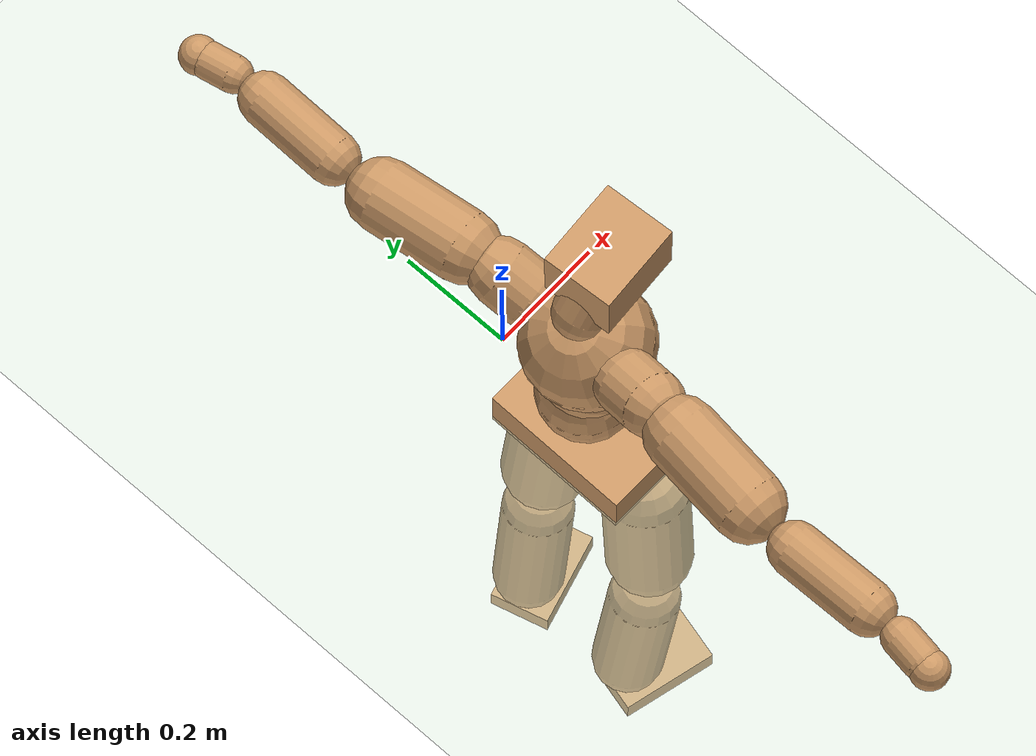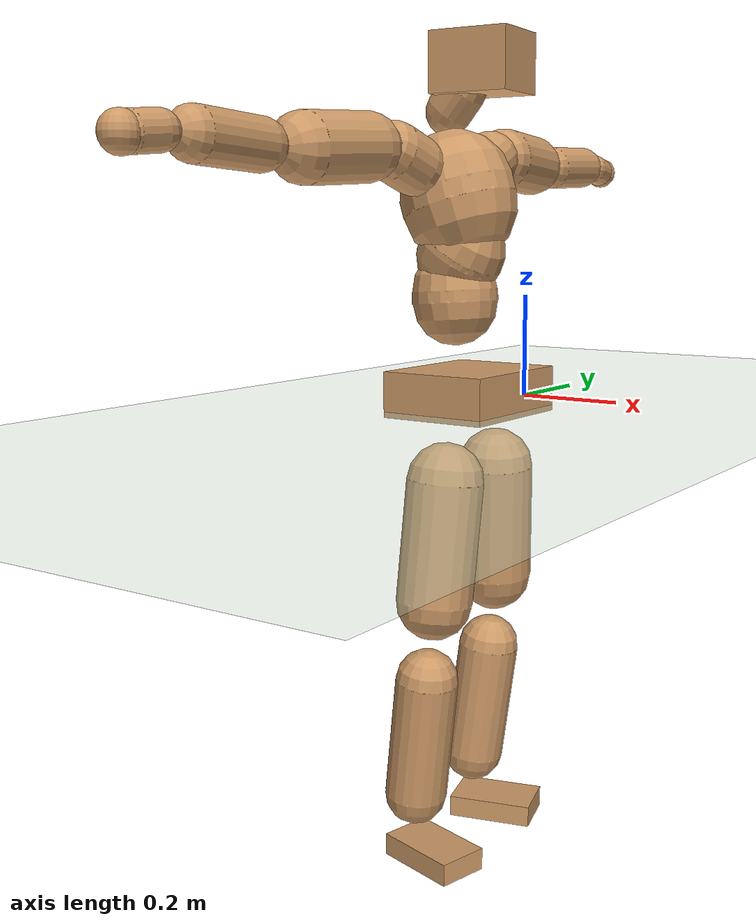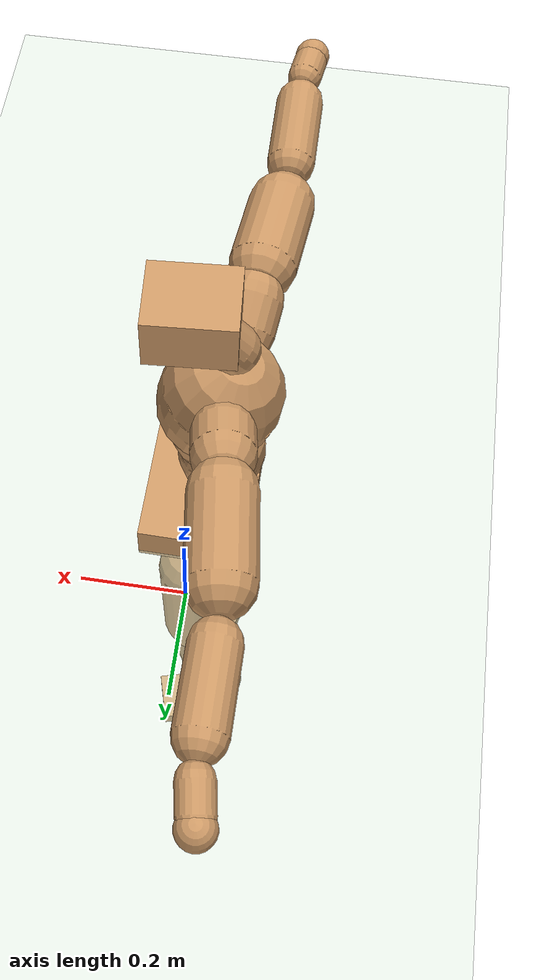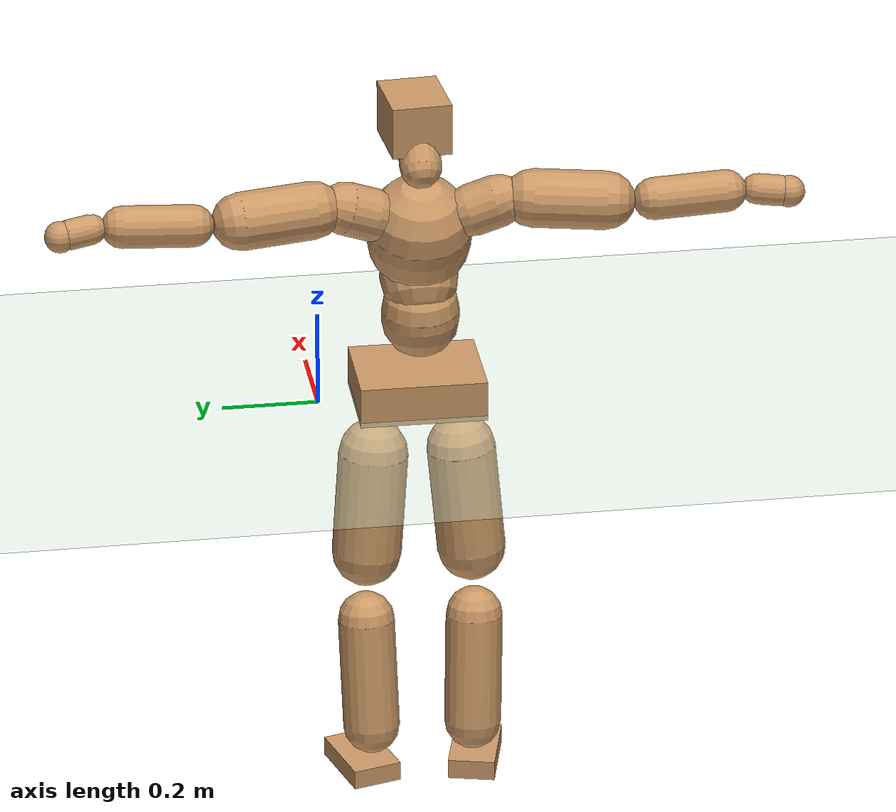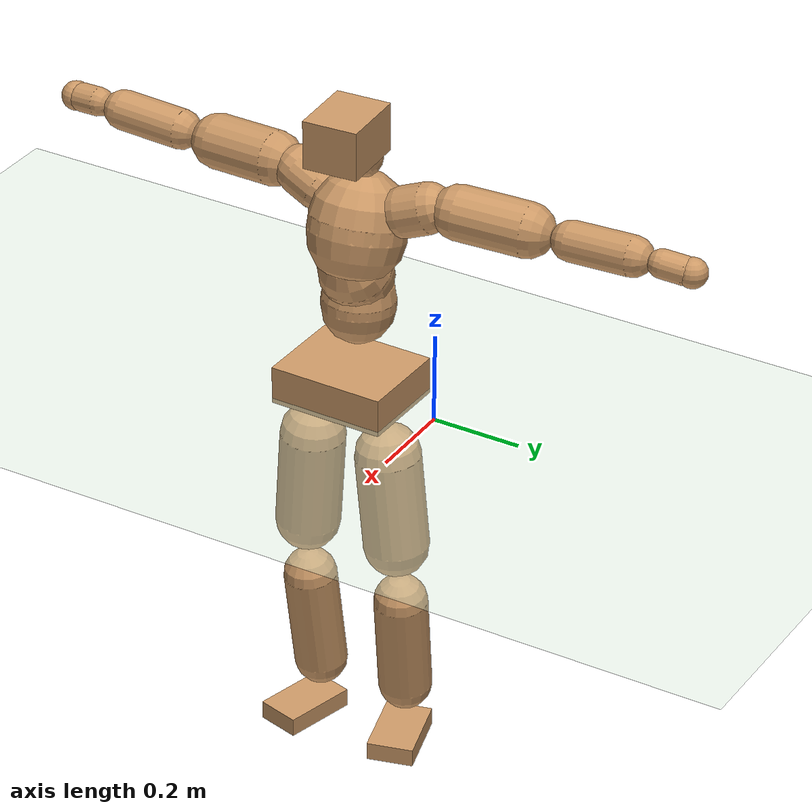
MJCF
<mujoco model="humanoid">
  <compiler coordinate="local" angle="radian"/>
  <default>
    <joint damping="0.0" armature="0.01" stiffness="0.0" limited="true"/>
    <geom conaffinity="1" condim="3" contype="7" margin="0.001" rgba="0.8 0.6 .4 1"/>
  </default>
  <asset>
    <texture type="skybox" builtin="gradient" rgb1=".4 .5 .6" rgb2="0 0 0" width="100" height="100"/>
    <texture builtin="flat" height="1278" mark="cross" markrgb="1 1 1" name="texgeom" random="0.01" rgb1="0.8 0.6 0.4" rgb2="0.8 0.6 0.4" type="cube" width="127"/>
    <texture builtin="checker" height="100" name="texplane" rgb1="0 0 0" rgb2="0.8 0.8 0.8" type="2d" width="100"/>
    <material name="MatPlane" reflectance="0.5" shininess="1" specular="1" texrepeat="60 60" texture="texplane"/>
    <material name="geom" texture="texgeom" texuniform="true"/>
  </asset>
  <worldbody>
    <light cutoff="100" diffuse="1 1 1" dir="-0 0 -1.3" directional="true" exponent="1" pos="0 0 1.3" specular=".1 .1 .1"/>
    <geom conaffinity="1" condim="3" name="floor" pos="0 0 0" rgba="0.8 0.9 0.8 1" size="100 100 .2" type="plane" material="MatPlane"/>
    <body name="Pelvis" pos="0.0016 -0.2056 0.043">
      <freejoint name="Pelvis"/>
      <geom type="box" contype="1" conaffinity="1" density="500" pos="-0.0050 0.0001 -0.0132" size="0.1041 0.131 0.0426" quat="1.0000 0.0000 0.0000 -0.0074" name="Pelvis"/>
      <body name="L_Hip" pos="0.0009 0.087 -0.0931">
        <joint name="L_Hip_x" type="hinge" pos="0 0 0" axis="1 0 0" stiffness="800" damping="80" armature="0.02" range="-180.0000 180.0000"/>
        <joint name="L_Hip_y" type="hinge" pos="0 0 0" axis="0 1 0" stiffness="800" damping="80" armature="0.02" range="-180.0000 180.0000"/>
        <joint name="L_Hip_z" type="hinge" pos="0 0 0" axis="0 0 1" stiffness="800" damping="80" armature="0.02" range="-180.0000 180.0000"/>
        <geom type="capsule" contype="1" conaffinity="1" density="500" fromto="-0.0031 0.0054 -0.0746 -0.0124 0.0215 -0.2983" size="0.0724" name="L_Hip"/>
        <body name="L_Knee" pos="-0.0155 0.0269 -0.3729">
          <joint name="L_Knee_x" type="hinge" pos="0 0 0" axis="1 0 0" stiffness="800" damping="80" armature="0.02" range="-180.0000 180.0000"/>
          <joint name="L_Knee_y" type="hinge" pos="0 0 0" axis="0 1 0" stiffness="800" damping="80" armature="0.02" range="-180.0000 180.0000"/>
          <joint name="L_Knee_z" type="hinge" pos="0 0 0" axis="0 0 1" stiffness="800" damping="80" armature="0.02" range="-180.0000 180.0000"/>
          <geom type="capsule" contype="1" conaffinity="1" density="500" fromto="-0.0102 -0.0019 -0.0785 -0.0410 -0.0077 -0.3141" size="0.0596" name="L_Knee"/>
          <body name="L_Ankle" pos="-0.0512 -0.0096 -0.3927">
            <joint name="L_Ankle_x" type="hinge" pos="0 0 0" axis="1 0 0" stiffness="800" damping="80" armature="0.02" range="-180.0000 180.0000"/>
            <joint name="L_Ankle_y" type="hinge" pos="0 0 0" axis="0 1 0" stiffness="800" damping="80" armature="0.02" range="-180.0000 180.0000"/>
            <joint name="L_Ankle_z" type="hinge" pos="0 0 0" axis="0 0 1" stiffness="800" damping="80" armature="0.02" range="-180.0000 180.0000"/>
            <geom type="box" contype="1" conaffinity="1" density="500" pos="0.0571 0.0155 -0.0284" size="0.0825 0.0518 0.0205" quat="0.9912 0.0000 0.0000 0.1326" name="L_Ankle"/>
            <body name="L_Toe" pos="0.1141 0.0311 -0.0567">
              <joint name="L_Toe_x" type="hinge" pos="0 0 0" axis="1 0 0" stiffness="500" damping="50" armature="0.02" range="-180.0000 180.0000"/>
              <joint name="L_Toe_y" type="hinge" pos="0 0 0" axis="0 1 0" stiffness="500" damping="50" armature="0.02" range="-180.0000 180.0000"/>
              <joint name="L_Toe_z" type="hinge" pos="0 0 0" axis="0 0 1" stiffness="500" damping="50" armature="0.02" range="-180.0000 180.0000"/>
              <geom type="box" contype="1" conaffinity="1" density="500" pos="0.0000 0.0000 0.0294" size="0.001 0.0025 0.0011" quat="0.9904 0.0000 0.0000 0.1384" name="L_Toe"/>
            </body>
          </body>
        </body>
      </body>
      <body name="R_Hip" pos="0.0036 -0.0849 -0.093">
        <joint name="R_Hip_x" type="hinge" pos="0 0 0" axis="1 0 0" stiffness="800" damping="80" armature="0.02" range="-180.0000 180.0000"/>
        <joint name="R_Hip_y" type="hinge" pos="0 0 0" axis="0 1 0" stiffness="800" damping="80" armature="0.02" range="-180.0000 180.0000"/>
        <joint name="R_Hip_z" type="hinge" pos="0 0 0" axis="0 0 1" stiffness="800" damping="80" armature="0.02" range="-180.0000 180.0000"/>
        <geom type="capsule" contype="1" conaffinity="1" density="500" fromto="-0.0034 -0.0069 -0.0757 -0.0137 -0.0275 -0.3030" size="0.0717" name="R_Hip"/>
        <body name="R_Knee" pos="-0.0171 -0.0343 -0.3787">
          <joint name="R_Knee_x" type="hinge" pos="0 0 0" axis="1 0 0" stiffness="800" damping="80" armature="0.02" range="-180.0000 180.0000"/>
          <joint name="R_Knee_y" type="hinge" pos="0 0 0" axis="0 1 0" stiffness="800" damping="80" armature="0.02" range="-180.0000 180.0000"/>
          <joint name="R_Knee_z" type="hinge" pos="0 0 0" axis="0 0 1" stiffness="800" damping="80" armature="0.02" range="-180.0000 180.0000"/>
          <geom type="capsule" contype="1" conaffinity="1" density="500" fromto="-0.0100 0.0024 -0.0792 -0.0402 0.0096 -0.3166" size="0.0595" name="R_Knee"/>
          <body name="R_Ankle" pos="-0.0502 0.012 -0.3958">
            <joint name="R_Ankle_x" type="hinge" pos="0 0 0" axis="1 0 0" stiffness="800" damping="80" armature="0.02" range="-180.0000 180.0000"/>
            <joint name="R_Ankle_y" type="hinge" pos="0 0 0" axis="0 1 0" stiffness="800" damping="80" armature="0.02" range="-180.0000 180.0000"/>
            <joint name="R_Ankle_z" type="hinge" pos="0 0 0" axis="0 0 1" stiffness="800" damping="80" armature="0.02" range="-180.0000 180.0000"/>
            <geom type="box" contype="1" conaffinity="1" density="500" pos="0.0593 -0.0153 -0.0249" size="0.0832 0.0493 0.0211" quat="0.9920 0.0000 0.0000 -0.1260" name="R_Ankle"/>
            <body name="R_Toe" pos="0.1187 -0.0306 -0.0498">
              <joint name="R_Toe_x" type="hinge" pos="0 0 0" axis="1 0 0" stiffness="500" damping="50" armature="0.02" range="-180.0000 180.0000"/>
              <joint name="R_Toe_y" type="hinge" pos="0 0 0" axis="0 1 0" stiffness="500" damping="50" armature="0.02" range="-180.0000 180.0000"/>
              <joint name="R_Toe_z" type="hinge" pos="0 0 0" axis="0 0 1" stiffness="500" damping="50" armature="0.02" range="-180.0000 180.0000"/>
              <geom type="box" contype="1" conaffinity="1" density="500" pos="0.0000 0.0000 0.0264" size="0.001 0.0024 0.0011" quat="0.9932 0.0000 0.0000 -0.1163" name="R_Toe"/>
            </body>
          </body>
        </body>
      </body>
      <body name="Torso" pos="-0.0347 -0.0016 0.1069">
        <joint name="Torso_x" type="hinge" pos="0 0 0" axis="1 0 0" stiffness="1000" damping="100" armature="0.02" range="-180.0000 180.0000"/>
        <joint name="Torso_y" type="hinge" pos="0 0 0" axis="0 1 0" stiffness="1000" damping="100" armature="0.02" range="-180.0000 180.0000"/>
        <joint name="Torso_z" type="hinge" pos="0 0 0" axis="0 0 1" stiffness="1000" damping="100" armature="0.02" range="-180.0000 180.0000"/>
        <geom type="capsule" contype="1" conaffinity="1" density="500" fromto="-0.0045 0.0011 0.0668 -0.0030 0.0008 0.0446" size="0.0803" name="Torso"/>
        <body name="Spine" pos="-0.0075 0.0019 0.1114">
          <joint name="Spine_x" type="hinge" pos="0 0 0" axis="1 0 0" stiffness="1000" damping="100" armature="0.02" range="-180.0000 180.0000"/>
          <joint name="Spine_y" type="hinge" pos="0 0 0" axis="0 1 0" stiffness="1000" damping="100" armature="0.02" range="-180.0000 180.0000"/>
          <joint name="Spine_z" type="hinge" pos="0 0 0" axis="0 0 1" stiffness="1000" damping="100" armature="0.02" range="-180.0000 180.0000"/>
          <geom type="capsule" contype="1" conaffinity="1" density="500" fromto="0.0193 0.0004 0.0289 0.0128 0.0003 0.0192" size="0.0811" name="Spine"/>
          <body name="Chest" pos="0.0321 0.0007 0.0481">
            <joint name="Chest_x" type="hinge" pos="0 0 0" axis="1 0 0" stiffness="1000" damping="100" armature="0.02" range="-180.0000 180.0000"/>
            <joint name="Chest_y" type="hinge" pos="0 0 0" axis="0 1 0" stiffness="1000" damping="100" armature="0.02" range="-180.0000 180.0000"/>
            <joint name="Chest_z" type="hinge" pos="0 0 0" axis="0 0 1" stiffness="1000" damping="100" armature="0.02" range="-180.0000 180.0000"/>
            <geom type="capsule" contype="1" conaffinity="1" density="500" fromto="-0.0278 -0.0005 0.0927 -0.0185 -0.0004 0.0618" size="0.1071" name="Chest"/>
            <body name="Neck" pos="-0.0542 -0.0009 0.2175">
              <joint name="Neck_x" type="hinge" pos="0 0 0" axis="1 0 0" stiffness="500" damping="50" armature="0.02" range="-180.0000 180.0000"/>
              <joint name="Neck_y" type="hinge" pos="0 0 0" axis="0 1 0" stiffness="500" damping="50" armature="0.02" range="-180.0000 180.0000"/>
              <joint name="Neck_z" type="hinge" pos="0 0 0" axis="0 0 1" stiffness="500" damping="50" armature="0.02" range="-180.0000 180.0000"/>
              <geom type="capsule" contype="1" conaffinity="1" density="500" fromto="0.0103 0.0003 0.0122 0.0412 0.0012 0.0488" size="0.0432" name="Neck"/>
              <body name="Head" pos="0.0515 0.0015 0.061">
                <joint name="Head_x" type="hinge" pos="0 0 0" axis="1 0 0" stiffness="500" damping="50" armature="0.02" range="-180.0000 180.0000"/>
                <joint name="Head_y" type="hinge" pos="0 0 0" axis="0 1 0" stiffness="500" damping="50" armature="0.02" range="-180.0000 180.0000"/>
                <joint name="Head_z" type="hinge" pos="0 0 0" axis="0 0 1" stiffness="500" damping="50" armature="0.02" range="-180.0000 180.0000"/>
                <geom type="box" contype="1" conaffinity="1" density="500" pos="0.0268 0.0018 0.0315" size="0.0763 0.0612 0.0539" quat="0.9995 0.0000 0.0000 0.0329" name="Head"/>
              </body>
            </body>
            <body name="L_Thorax" pos="-0.0391 0.0826 0.1239">
              <joint name="L_Thorax_x" type="hinge" pos="0 0 0" axis="1 0 0" stiffness="500" damping="50" armature="0.02" range="-180.0000 180.0000"/>
              <joint name="L_Thorax_y" type="hinge" pos="0 0 0" axis="0 1 0" stiffness="500" damping="50" armature="0.02" range="-180.0000 180.0000"/>
              <joint name="L_Thorax_z" type="hinge" pos="0 0 0" axis="0 0 1" stiffness="500" damping="50" armature="0.02" range="-180.0000 180.0000"/>
              <geom type="capsule" contype="1" conaffinity="1" density="500" fromto="-0.0024 0.0178 0.0068 -0.0097 0.0711 0.0274" size="0.0551" name="L_Thorax"/>
              <body name="L_Shoulder" pos="-0.0122 0.0889 0.0342">
                <joint name="L_Shoulder_x" type="hinge" pos="0 0 0" axis="1 0 0" stiffness="500" damping="50" armature="0.02" range="-720.0000 720.0000"/>
                <joint name="L_Shoulder_y" type="hinge" pos="0 0 0" axis="0 1 0" stiffness="500" damping="50" armature="0.02" range="-720.0000 720.0000"/>
                <joint name="L_Shoulder_z" type="hinge" pos="0 0 0" axis="0 0 1" stiffness="500" damping="50" armature="0.02" range="-720.0000 720.0000"/>
                <geom type="capsule" contype="1" conaffinity="1" density="500" fromto="-0.0060 0.0499 -0.0021 -0.0240 0.1994 -0.0085" size="0.0594" name="L_Shoulder"/>
                <body name="L_Elbow" pos="-0.03 0.2493 -0.0106">
                  <joint name="L_Elbow_x" type="hinge" pos="0 0 0" axis="1 0 0" stiffness="500" damping="50" armature="0.02" range="-720.0000 720.0000"/>
                  <joint name="L_Elbow_y" type="hinge" pos="0 0 0" axis="0 1 0" stiffness="500" damping="50" armature="0.02" range="-720.0000 720.0000"/>
                  <joint name="L_Elbow_z" type="hinge" pos="0 0 0" axis="0 0 1" stiffness="500" damping="50" armature="0.02" range="-720.0000 720.0000"/>
                  <geom type="capsule" contype="1" conaffinity="1" density="500" fromto="0.0004 0.0472 0.0021 0.0016 0.1890 0.0085" size="0.0434" name="L_Elbow"/>
                  <body name="L_Wrist" pos="0.002 0.2362 0.0107">
                    <joint name="L_Wrist_x" type="hinge" pos="0 0 0" axis="1 0 0" stiffness="300" damping="30" armature="0.02" range="-180.0000 180.0000"/>
                    <joint name="L_Wrist_y" type="hinge" pos="0 0 0" axis="0 1 0" stiffness="300" damping="30" armature="0.02" range="-180.0000 180.0000"/>
                    <joint name="L_Wrist_z" type="hinge" pos="0 0 0" axis="0 0 1" stiffness="300" damping="30" armature="0.02" range="-180.0000 180.0000"/>
                    <geom type="capsule" contype="1" conaffinity="1" density="500" fromto="-0.0026 0.0159 -0.0019 -0.0104 0.0638 -0.0077" size="0.0308" name="L_Wrist"/>
                    <body name="L_Hand" pos="-0.013 0.0797 -0.0096">
                      <joint name="L_Hand_x" type="hinge" pos="0 0 0" axis="1 0 0" stiffness="300" damping="30" armature="0.02" range="-180.0000 180.0000"/>
                      <joint name="L_Hand_y" type="hinge" pos="0 0 0" axis="0 1 0" stiffness="300" damping="30" armature="0.02" range="-180.0000 180.0000"/>
                      <joint name="L_Hand_z" type="hinge" pos="0 0 0" axis="0 0 1" stiffness="300" damping="30" armature="0.02" range="-180.0000 180.0000"/>
                      <geom type="sphere" contype="1" conaffinity="1" density="500" size="0.0323" pos="0.0000 0.0000 0.0000" name="L_Hand"/>
                    </body>
                  </body>
                </body>
              </body>
            </body>
            <body name="R_Thorax" pos="-0.0457 -0.0844 0.1222">
              <joint name="R_Thorax_x" type="hinge" pos="0 0 0" axis="1 0 0" stiffness="500" damping="50" armature="0.02" range="-180.0000 180.0000"/>
              <joint name="R_Thorax_y" type="hinge" pos="0 0 0" axis="0 1 0" stiffness="500" damping="50" armature="0.02" range="-180.0000 180.0000"/>
              <joint name="R_Thorax_z" type="hinge" pos="0 0 0" axis="0 0 1" stiffness="500" damping="50" armature="0.02" range="-180.0000 180.0000"/>
              <geom type="capsule" contype="1" conaffinity="1" density="500" fromto="-0.0026 -0.0184 0.0072 -0.0105 -0.0738 0.0289" size="0.0541" name="R_Thorax"/>
              <body name="R_Shoulder" pos="-0.0131 -0.0922 0.0362">
                <joint name="R_Shoulder_x" type="hinge" pos="0 0 0" axis="1 0 0" stiffness="500" damping="50" armature="0.02" range="-720.0000 720.0000"/>
                <joint name="R_Shoulder_y" type="hinge" pos="0 0 0" axis="0 1 0" stiffness="500" damping="50" armature="0.02" range="-720.0000 720.0000"/>
                <joint name="R_Shoulder_z" type="hinge" pos="0 0 0" axis="0 0 1" stiffness="500" damping="50" armature="0.02" range="-720.0000 720.0000"/>
                <geom type="capsule" contype="1" conaffinity="1" density="500" fromto="-0.0054 -0.0495 -0.0028 -0.0215 -0.1979 -0.0111" size="0.0603" name="R_Shoulder"/>
                <body name="R_Elbow" pos="-0.0269 -0.2473 -0.0139">
                  <joint name="R_Elbow_x" type="hinge" pos="0 0 0" axis="1 0 0" stiffness="500" damping="50" armature="0.02" range="-720.0000 720.0000"/>
                  <joint name="R_Elbow_y" type="hinge" pos="0 0 0" axis="0 1 0" stiffness="500" damping="50" armature="0.02" range="-720.0000 720.0000"/>
                  <joint name="R_Elbow_z" type="hinge" pos="0 0 0" axis="0 0 1" stiffness="500" damping="50" armature="0.02" range="-720.0000 720.0000"/>
                  <geom type="capsule" contype="1" conaffinity="1" density="500" fromto="0.0000 -0.0489 0.0024 0.0001 -0.1954 0.0095" size="0.0437" name="R_Elbow"/>
                  <body name="R_Wrist" pos="0.0001 -0.2443 0.0119">
                    <joint name="R_Wrist_x" type="hinge" pos="0 0 0" axis="1 0 0" stiffness="300" damping="30" armature="0.02" range="-180.0000 180.0000"/>
                    <joint name="R_Wrist_y" type="hinge" pos="0 0 0" axis="0 1 0" stiffness="300" damping="30" armature="0.02" range="-180.0000 180.0000"/>
                    <joint name="R_Wrist_z" type="hinge" pos="0 0 0" axis="0 0 1" stiffness="300" damping="30" armature="0.02" range="-180.0000 180.0000"/>
                    <geom type="capsule" contype="1" conaffinity="1" density="500" fromto="-0.0021 -0.0162 -0.0015 -0.0085 -0.0646 -0.0059" size="0.0317" name="R_Wrist"/>
                    <body name="R_Hand" pos="-0.0107 -0.0808 -0.0074">
                      <joint name="R_Hand_x" type="hinge" pos="0 0 0" axis="1 0 0" stiffness="300" damping="30" armature="0.02" range="-180.0000 180.0000"/>
                      <joint name="R_Hand_y" type="hinge" pos="0 0 0" axis="0 1 0" stiffness="300" damping="30" armature="0.02" range="-180.0000 180.0000"/>
                      <joint name="R_Hand_z" type="hinge" pos="0 0 0" axis="0 0 1" stiffness="300" damping="30" armature="0.02" range="-180.0000 180.0000"/>
                      <geom type="sphere" contype="1" conaffinity="1" density="500" size="0.0327" pos="0.0000 0.0000 0.0000" name="R_Hand"/>
                    </body>
                  </body>
                </body>
              </body>
            </body>
          </body>
        </body>
      </body>
    </body>
  </worldbody>
  <actuator>
    <motor name="L_Hip_x" joint="L_Hip_x" gear="500"/>
    <motor name="L_Hip_y" joint="L_Hip_y" gear="500"/>
    <motor name="L_Hip_z" joint="L_Hip_z" gear="500"/>
    <motor name="L_Knee_x" joint="L_Knee_x" gear="500"/>
    <motor name="L_Knee_y" joint="L_Knee_y" gear="500"/>
    <motor name="L_Knee_z" joint="L_Knee_z" gear="500"/>
    <motor name="L_Ankle_x" joint="L_Ankle_x" gear="500"/>
    <motor name="L_Ankle_y" joint="L_Ankle_y" gear="500"/>
    <motor name="L_Ankle_z" joint="L_Ankle_z" gear="500"/>
    <motor name="L_Toe_x" joint="L_Toe_x" gear="500"/>
    <motor name="L_Toe_y" joint="L_Toe_y" gear="500"/>
    <motor name="L_Toe_z" joint="L_Toe_z" gear="500"/>
    <motor name="R_Hip_x" joint="R_Hip_x" gear="500"/>
    <motor name="R_Hip_y" joint="R_Hip_y" gear="500"/>
    <motor name="R_Hip_z" joint="R_Hip_z" gear="500"/>
    <motor name="R_Knee_x" joint="R_Knee_x" gear="500"/>
    <motor name="R_Knee_y" joint="R_Knee_y" gear="500"/>
    <motor name="R_Knee_z" joint="R_Knee_z" gear="500"/>
    <motor name="R_Ankle_x" joint="R_Ankle_x" gear="500"/>
    <motor name="R_Ankle_y" joint="R_Ankle_y" gear="500"/>
    <motor name="R_Ankle_z" joint="R_Ankle_z" gear="500"/>
    <motor name="R_Toe_x" joint="R_Toe_x" gear="500"/>
    <motor name="R_Toe_y" joint="R_Toe_y" gear="500"/>
    <motor name="R_Toe_z" joint="R_Toe_z" gear="500"/>
    <motor name="Torso_x" joint="Torso_x" gear="500"/>
    <motor name="Torso_y" joint="Torso_y" gear="500"/>
    <motor name="Torso_z" joint="Torso_z" gear="500"/>
    <motor name="Spine_x" joint="Spine_x" gear="500"/>
    <motor name="Spine_y" joint="Spine_y" gear="500"/>
    <motor name="Spine_z" joint="Spine_z" gear="500"/>
    <motor name="Chest_x" joint="Chest_x" gear="500"/>
    <motor name="Chest_y" joint="Chest_y" gear="500"/>
    <motor name="Chest_z" joint="Chest_z" gear="500"/>
    <motor name="Neck_x" joint="Neck_x" gear="500"/>
    <motor name="Neck_y" joint="Neck_y" gear="500"/>
    <motor name="Neck_z" joint="Neck_z" gear="500"/>
    <motor name="Head_x" joint="Head_x" gear="500"/>
    <motor name="Head_y" joint="Head_y" gear="500"/>
    <motor name="Head_z" joint="Head_z" gear="500"/>
    <motor name="L_Thorax_x" joint="L_Thorax_x" gear="500"/>
    <motor name="L_Thorax_y" joint="L_Thorax_y" gear="500"/>
    <motor name="L_Thorax_z" joint="L_Thorax_z" gear="500"/>
    <motor name="L_Shoulder_x" joint="L_Shoulder_x" gear="500"/>
    <motor name="L_Shoulder_y" joint="L_Shoulder_y" gear="500"/>
    <motor name="L_Shoulder_z" joint="L_Shoulder_z" gear="500"/>
    <motor name="L_Elbow_x" joint="L_Elbow_x" gear="500"/>
    <motor name="L_Elbow_y" joint="L_Elbow_y" gear="500"/>
    <motor name="L_Elbow_z" joint="L_Elbow_z" gear="500"/>
    <motor name="L_Wrist_x" joint="L_Wrist_x" gear="500"/>
    <motor name="L_Wrist_y" joint="L_Wrist_y" gear="500"/>
    <motor name="L_Wrist_z" joint="L_Wrist_z" gear="500"/>
    <motor name="L_Hand_x" joint="L_Hand_x" gear="500"/>
    <motor name="L_Hand_y" joint="L_Hand_y" gear="500"/>
    <motor name="L_Hand_z" joint="L_Hand_z" gear="500"/>
    <motor name="R_Thorax_x" joint="R_Thorax_x" gear="500"/>
    <motor name="R_Thorax_y" joint="R_Thorax_y" gear="500"/>
    <motor name="R_Thorax_z" joint="R_Thorax_z" gear="500"/>
    <motor name="R_Shoulder_x" joint="R_Shoulder_x" gear="500"/>
    <motor name="R_Shoulder_y" joint="R_Shoulder_y" gear="500"/>
    <motor name="R_Shoulder_z" joint="R_Shoulder_z" gear="500"/>
    <motor name="R_Elbow_x" joint="R_Elbow_x" gear="500"/>
    <motor name="R_Elbow_y" joint="R_Elbow_y" gear="500"/>
    <motor name="R_Elbow_z" joint="R_Elbow_z" gear="500"/>
    <motor name="R_Wrist_x" joint="R_Wrist_x" gear="500"/>
    <motor name="R_Wrist_y" joint="R_Wrist_y" gear="500"/>
    <motor name="R_Wrist_z" joint="R_Wrist_z" gear="500"/>
    <motor name="R_Hand_x" joint="R_Hand_x" gear="500"/>
    <motor name="R_Hand_y" joint="R_Hand_y" gear="500"/>
    <motor name="R_Hand_z" joint="R_Hand_z" gear="500"/>
  </actuator>
  <contact>
    <exclude body1="Torso" body2="Chest"/>
    <exclude body1="Head" body2="Chest"/>
    <exclude body1="R_Knee" body2="R_Toe"/>
    <exclude body1="R_Knee" body2="L_Ankle"/>
    <exclude body1="R_Knee" body2="L_Toe"/>
    <exclude body1="L_Knee" body2="L_Toe"/>
    <exclude body1="L_Knee" body2="R_Ankle"/>
    <exclude body1="L_Knee" body2="R_Toe"/>
    <exclude body1="L_Shoulder" body2="Chest"/>
    <exclude body1="R_Shoulder" body2="Chest"/>
  </contact>
  <sensor/>
  <size njmax="700" nconmax="700"/>
</mujoco>
